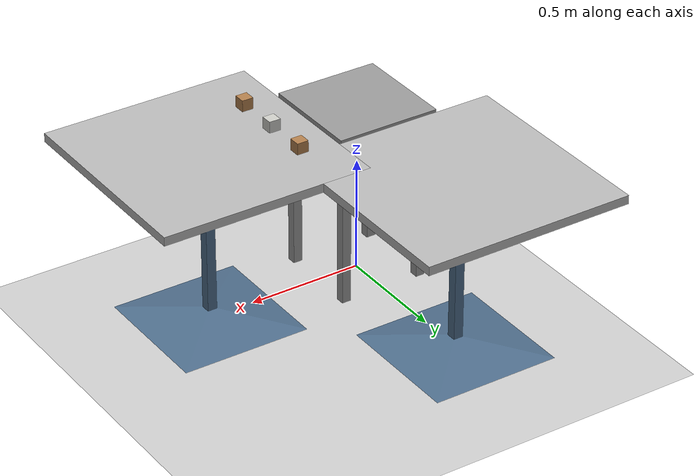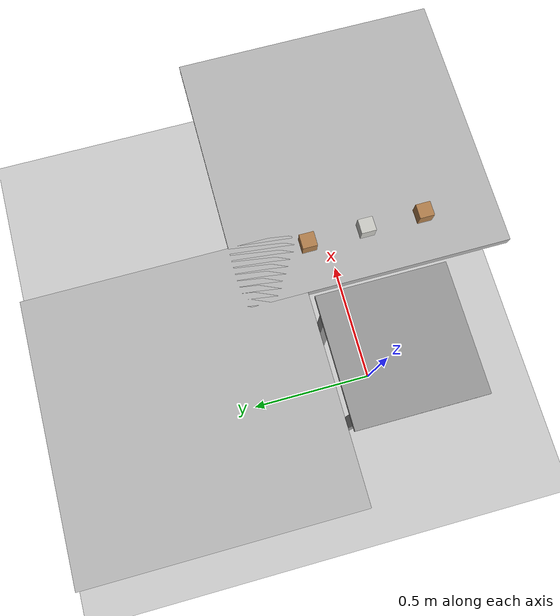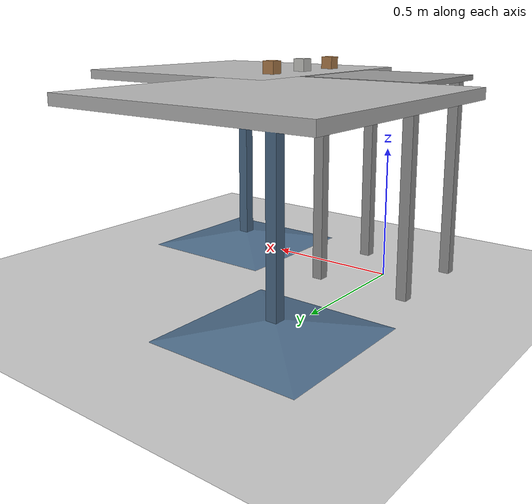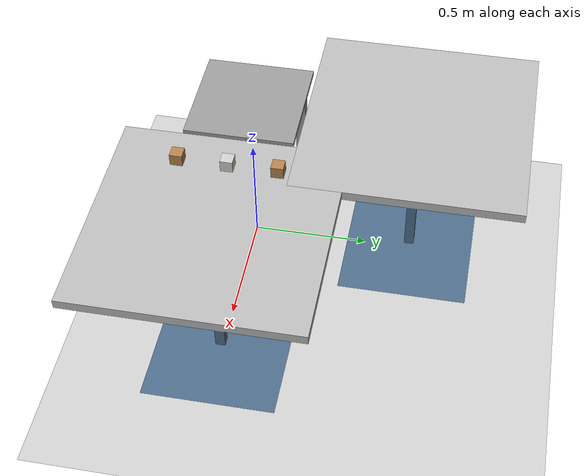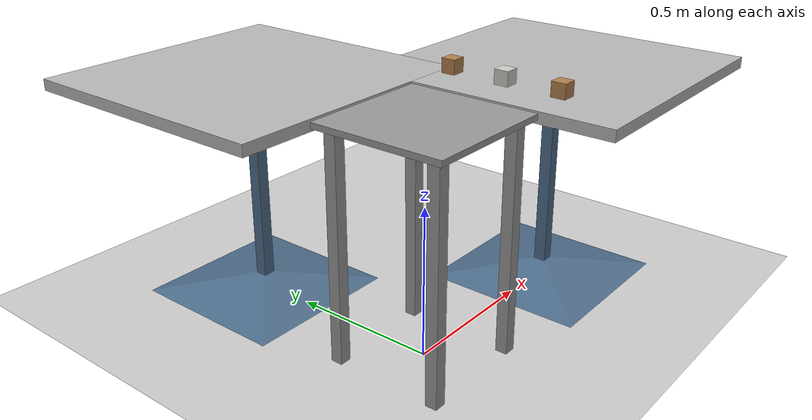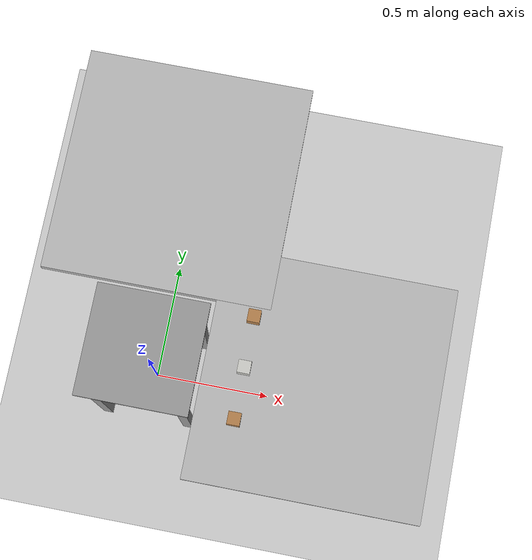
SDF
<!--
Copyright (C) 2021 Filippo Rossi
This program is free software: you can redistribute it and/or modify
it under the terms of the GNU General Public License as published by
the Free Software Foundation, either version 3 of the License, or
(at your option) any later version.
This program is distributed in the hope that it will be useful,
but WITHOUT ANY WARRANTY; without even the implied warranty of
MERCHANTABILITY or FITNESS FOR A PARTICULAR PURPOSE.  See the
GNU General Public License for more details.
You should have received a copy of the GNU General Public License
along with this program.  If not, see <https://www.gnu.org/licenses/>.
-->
<sdf version="1.6">
 <world name="ur5_cubes">
  <gravity>0 0 -9.81</gravity>
  <physics name="default_physics" default="0" type="ode">
   <max_step_size>0.001</max_step_size>
   <real_time_factor>1</real_time_factor>
   <real_time_update_rate>1000</real_time_update_rate>
  </physics>
  <scene><ambient>0.4 0.4 0.4 1</ambient><background>0.7 0.7 0.7 1</background><shadows>0</shadows></scene>
  <include><uri>model://sun</uri></include>
  <include><uri>model://ground_plane</uri></include>
  <model name="ur5_base"><include><uri>model://ur5_base.model</uri></include></model>
  <model name="cafe_table_1">
   <static>true</static>
   <include><uri>model://cafe_table.model</uri><pose>0.7 0 0 0 0 0</pose></include>
  </model>
  <model name="cafe_table_2">
   <static>true</static>
   <include><uri>model://cafe_table.model</uri><pose>0 0.7 0 0 0 0</pose></include>
  </model>
  <model name="cube1">
   <pose>0.4 -0.2 0.775 0 0 0</pose>
   <link name="link">
    <pose>0 0 0.025 0 0 0</pose>
    <inertial>
     <mass>0.0565</mass>
     <inertia>
      <ixx>2.3541666666666672e-05</ixx>
      <ixy>0</ixy>
      <ixz>0</ixz>
      <iyy>2.3541666666666672e-05</iyy>
      <iyz>0</iyz>
      <izz>2.3541666666666672e-05</izz>
     </inertia>
    </inertial>
    <collision name="collision">
     <geometry><box><size>0.05 0.05 0.05</size></box></geometry>
     <surface>
      <contact>
       <poissons_ratio>0.347</poissons_ratio>
       <elastic_modulus>8.8e+09</elastic_modulus>
       <ode><kp>100000</kp><kd>1</kd><max_vel>1.0</max_vel><min_depth>0.001</min_depth></ode>
      </contact>
      <friction>
       <torsional>
        <coefficient>1.0</coefficient>
        <use_patch_radius>0</use_patch_radius>
        <surface_radius>0.05</surface_radius>
       </torsional>
      </friction>
     </surface>
    </collision>
    <visual name="visual">
     <geometry><box><size>0.05 0.05 0.05</size></box></geometry>
     <material>
      <script><uri>file://media/materials/scripts/gazebo.material</uri><name>Gazebo/Wood</name></script>
     </material>
    </visual>
   </link>
  </model>
  <model name="cube2">
   <pose>0.4 0 0.775 0 0 0</pose>
   <link name="link">
    <pose>0 0 0.025 0 0 0</pose>
    <inertial>
     <mass>0.0565</mass>
     <inertia>
      <ixx>2.3541666666666672e-05</ixx>
      <ixy>0</ixy>
      <ixz>0</ixz>
      <iyy>2.3541666666666672e-05</iyy>
      <iyz>0</iyz>
      <izz>2.3541666666666672e-05</izz>
     </inertia>
    </inertial>
    <collision name="collision">
     <geometry><box><size>0.05 0.05 0.05</size></box></geometry>
     <surface>
      <contact>
       <poissons_ratio>0.347</poissons_ratio>
       <elastic_modulus>8.8e+09</elastic_modulus>
       <ode><kp>100000</kp><kd>1</kd><max_vel>1.0</max_vel><min_depth>0.001</min_depth></ode>
      </contact>
      <friction>
       <torsional>
        <coefficient>1.0</coefficient>
        <use_patch_radius>0</use_patch_radius>
        <surface_radius>0.05</surface_radius>
       </torsional>
      </friction>
     </surface>
    </collision>
    <visual name="visual">
     <geometry><box><size>0.05 0.05 0.05</size></box></geometry>
     <material>
      <script><uri>file://media/materials/scripts/gazebo.material</uri><name>Gazebo/CeilingTiled</name></script>
     </material>
    </visual>
   </link>
  </model>
  <model name="cube3">
   <pose>0.4 0.2 0.775 0 0 0</pose>
   <link name="link">
    <pose>0 0 0.025 0 0 0</pose>
    <inertial>
     <mass>0.0565</mass>
     <inertia>
      <ixx>2.3541666666666672e-05</ixx>
      <ixy>0</ixy>
      <ixz>0</ixz>
      <iyy>2.3541666666666672e-05</iyy>
      <iyz>0</iyz>
      <izz>2.3541666666666672e-05</izz>
     </inertia>
    </inertial>
    <collision name="collision">
     <geometry><box><size>0.05 0.05 0.05</size></box></geometry>
     <surface>
      <contact>
       <poissons_ratio>0.347</poissons_ratio>
       <elastic_modulus>8.8e+09</elastic_modulus>
       <ode><kp>100000</kp><kd>1</kd><max_vel>1.0</max_vel><min_depth>0.001</min_depth></ode>
      </contact>
      <friction>
       <torsional>
        <coefficient>1.0</coefficient>
        <use_patch_radius>0</use_patch_radius>
        <surface_radius>0.05</surface_radius>
       </torsional>
      </friction>
     </surface>
    </collision>
    <visual name="visual">
     <geometry><box><size>0.05 0.05 0.05</size></box></geometry>
     <material>
      <script><uri>file://media/materials/scripts/gazebo.material</uri><name>Gazebo/WoodPallet</name></script>
     </material>
    </visual>
   </link>
  </model>
 </world>
</sdf>

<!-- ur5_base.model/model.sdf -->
<sdf version="1.6">
  <model name="ur5_base">
    <static>true</static>

    <link name="top_plate">
      <pose>0 0 0.765 0 0 0</pose>
      <collision name="top_plate_collision">
        <geometry>
          <box>
            <size>0.45 0.45 0.02</size>
          </box>
        </geometry>
        <surface>
          <contact>
            <collide_bitmask>0x01</collide_bitmask>
          </contact>
        </surface>
      </collision>
      <visual name="top_plate_visual">
        <geometry>
          <box>
            <size>0.45 0.45 0.02</size>
          </box>
        </geometry>
        <material>
          <script>
            <uri>file://media/materials/scripts/gazebo.material</uri>
            <name>Gazebo/Grey</name>
          </script>
        </material>
      </visual>
    </link>
    <link name="leg1">
      <pose>0.18 0.18 0.3775 0 0 0</pose>
      <collision name="leg1_collision">
        <geometry>
          <box>
            <size>0.04 0.04 0.755</size>
          </box>
        </geometry>
      </collision>
      <visual name="leg1_visual">
        <geometry>
          <box>
            <size>0.04 0.04 0.755</size>
          </box>
        </geometry>
        <material>
          <script>
            <uri>file://media/materials/scripts/gazebo.material</uri>
            <name>Gazebo/Grey</name>
          </script>
        </material>
      </visual>
    </link>
    <link name="leg2">
      <pose>-0.18 0.18 0.3775 0 0 0</pose>
      <collision name="leg2_collision">
        <geometry>
          <box>
            <size>0.04 0.04 0.755</size>
          </box>
        </geometry>
      </collision>
      <visual name="leg2_visual">
        <geometry>
          <box>
            <size>0.04 0.04 0.755</size>
          </box>
        </geometry>
        <material>
          <script>
            <uri>file://media/materials/scripts/gazebo.material</uri>
            <name>Gazebo/Grey</name>
          </script>
        </material>
      </visual>
    </link>
    <link name="leg3">
      <pose>0.18 -0.18 0.3775 0 0 0</pose>
      <collision name="leg3_collision">
        <geometry>
          <box>
            <size>0.04 0.04 0.755</size>
          </box>
        </geometry>
      </collision>
      <visual name="leg3_visual">
        <geometry>
          <box>
            <size>0.04 0.04 0.755</size>
          </box>
        </geometry>
        <material>
          <script>
            <uri>file://media/materials/scripts/gazebo.material</uri>
            <name>Gazebo/Grey</name>
          </script>
        </material>
      </visual>
    </link>
    <link name="leg4">
      <pose>-0.18 -0.18 0.3775 0 0 0</pose>
      <collision name="leg4_collision">
        <geometry>
          <box>
            <size>0.04 0.04 0.755</size>
          </box>
        </geometry>
      </collision>
      <visual name="leg4_visual">
        <geometry>
          <box>
            <size>0.04 0.04 0.755</size>
          </box>
        </geometry>
        <material>
          <script>
            <uri>file://media/materials/scripts/gazebo.material</uri>
            <name>Gazebo/Grey</name>
          </script>
        </material>
      </visual>
    </link>
  </model>
</sdf>

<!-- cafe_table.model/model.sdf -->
<sdf version="1.5">
  <model name="cafe_table">
    <static>true</static>
    <link name="link">
      <collision name="surface">
        <pose>0 0 0.755 0 0 0</pose>
        <geometry>
          <box>
            <size>0.913 0.913 0.04</size>
          </box>
        </geometry>
      </collision>

      <collision name="column">
        <pose>0 0 0.37 0 0 0</pose>
        <geometry>
          <box>
            <size>0.042 0.042 0.74</size>
          </box>
        </geometry>
      </collision>

      <collision name="base">
        <pose>0 0 0.02 0 0 0</pose>
        <geometry>
          <box>
            <size>0.56 0.56 0.04</size>
          </box>
        </geometry>
      </collision>

      <visual name="visual">
        <geometry>
          <mesh>
            <uri>model://cafe_table.model/meshes/cafe_table.dae</uri>
          </mesh>
        </geometry>
      </visual>
    </link>
  </model>
</sdf>
